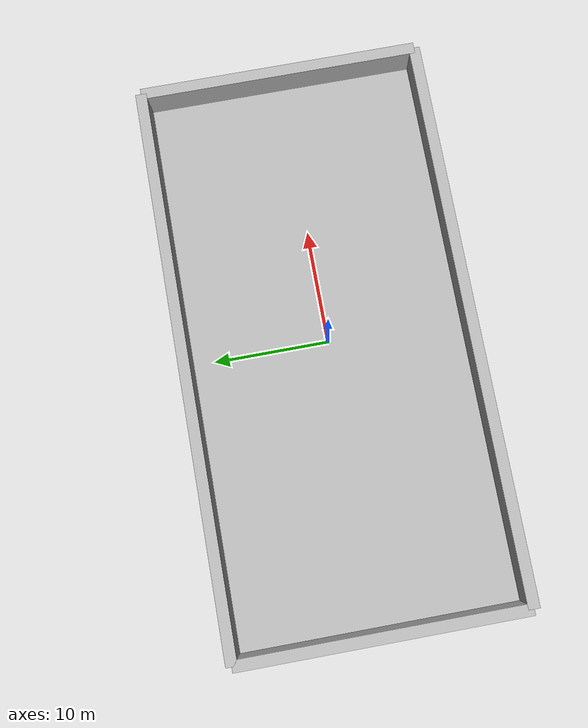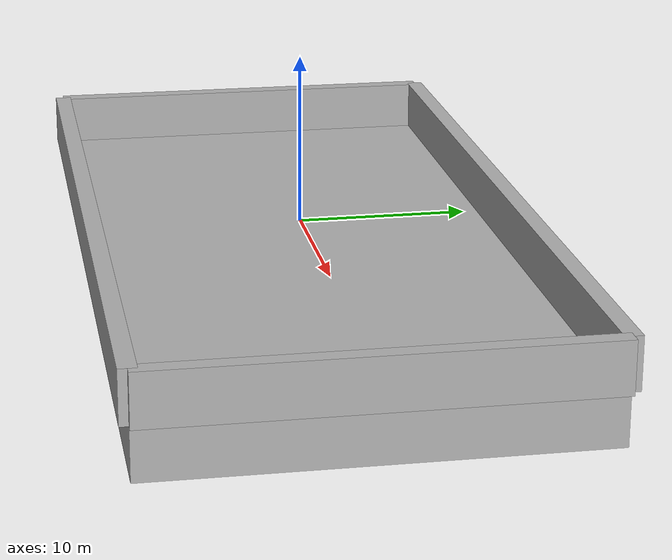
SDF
<sdf version='1.10'>
  <world name='underwater_world'>
    <scene>
      <ambient>0 1 1 1</ambient>
      <background>0 0.699999988 0.800000012 1</background>
      <shadows>true</shadows>
    </scene>
    <physics name='1ms' type='ode'>
      <max_step_size>0.001</max_step_size>
      <real_time_factor>1</real_time_factor>
      <real_time_update_rate>1000</real_time_update_rate>
    </physics>
    <plugin name='gz::sim::systems::Physics' filename='gz-sim-physics-system'/>
    <plugin name='gz::sim::systems::Sensors' filename='gz-sim-sensors-system'>
      <render_engine>ogre2</render_engine>
    </plugin>
    <plugin name='gz::sim::systems::UserCommands' filename='gz-sim-user-commands-system'/>
    <plugin name='gz::sim::systems::SceneBroadcaster' filename='gz-sim-scene-broadcaster-system'/>
    <plugin name='gz::sim::systems::Buoyancy' filename='gz-sim-buoyancy-system'>
      <uniform_fluid_density>1025</uniform_fluid_density>
    </plugin>
    <plugin name='gz::sim::systems::Imu' filename='gz-sim-imu-system'/>
    <plugin name='gz::sim::systems::AirPressure' filename='gz-sim-air-pressure-system'/>
    <gui>
      <plugin name='3D View' filename='MinimalScene'>
        <gz-gui>
          <title>3D View</title>
          <property type='bool' key='showTitleBar'>false</property>
          <property type='string' key='state'>docked</property>
        </gz-gui>
        <engine>ogre2</engine>
        <scene>scene</scene>
        <ambient>0.0 1.0 1.0</ambient>
        <background_color>0.0 0.7 0.8</background_color>
      </plugin>
      <plugin name='Entity context menu' filename='EntityContextMenuPlugin'>
        <gz-gui>
          <property key='state' type='string'>floating</property>
          <property key='width' type='double'>5</property>
          <property key='height' type='double'>5</property>
          <property key='showTitleBar' type='bool'>false</property>
        </gz-gui>
      </plugin>
      <plugin name='Scene Manager' filename='GzSceneManager'>
        <gz-gui>
          <property key='resizable' type='bool'>false</property>
          <property key='width' type='double'>5</property>
          <property key='height' type='double'>5</property>
          <property key='state' type='string'>floating</property>
          <property key='showTitleBar' type='bool'>false</property>
        </gz-gui>
      </plugin>
      <plugin name='Interactive view control' filename='InteractiveViewControl'>
        <gz-gui>
          <property key='resizable' type='bool'>false</property>
          <property key='width' type='double'>5</property>
          <property key='height' type='double'>5</property>
          <property key='state' type='string'>floating</property>
          <property key='showTitleBar' type='bool'>false</property>
        </gz-gui>
      </plugin>
      <plugin name='Camera Tracking' filename='CameraTracking'>
        <gz-gui>
          <property key='resizable' type='bool'>false</property>
          <property key='width' type='double'>5</property>
          <property key='height' type='double'>5</property>
          <property key='state' type='string'>floating</property>
          <property key='showTitleBar' type='bool'>false</property>
        </gz-gui>
      </plugin>
      <plugin name='Spawn Entities' filename='Spawn'>
        <gz-gui>
          <property key='resizable' type='bool'>false</property>
          <property key='width' type='double'>5</property>
          <property key='height' type='double'>5</property>
          <property key='state' type='string'>floating</property>
          <property key='showTitleBar' type='bool'>false</property>
        </gz-gui>
      </plugin>
      <plugin name='World control' filename='WorldControl'>
        <gz-gui>
          <title>World control</title>
          <property type='bool' key='showTitleBar'>false</property>
          <property type='bool' key='resizable'>false</property>
          <property type='double' key='height'>72</property>
          <property type='double' key='z'>1</property>
          <property type='string' key='state'>floating</property>
          <anchors target='3D View'>
            <line own='left' target='left'/>
            <line own='bottom' target='bottom'/>
          </anchors>
        </gz-gui>
        <play_pause>true</play_pause>
        <step>true</step>
        <start_paused>true</start_paused>
        <use_event>true</use_event>
      </plugin>
      <plugin name='World stats' filename='WorldStats'>
        <gz-gui>
          <title>World stats</title>
          <property type='bool' key='showTitleBar'>false</property>
          <property type='bool' key='resizable'>false</property>
          <property type='double' key='height'>110</property>
          <property type='double' key='width'>290</property>
          <property type='double' key='z'>1</property>
          <property type='string' key='state'>floating</property>
          <anchors target='3D View'>
            <line own='right' target='right'/>
            <line own='bottom' target='bottom'/>
          </anchors>
        </gz-gui>
        <sim_time>true</sim_time>
        <real_time>true</real_time>
        <real_time_factor>true</real_time_factor>
        <iterations>true</iterations>
      </plugin>
      <plugin name='Shapes' filename='Shapes'>
        <gz-gui>
          <property key='resizable' type='bool'>false</property>
          <property key='x' type='double'>0</property>
          <property key='y' type='double'>0</property>
          <property key='width' type='double'>250</property>
          <property key='height' type='double'>50</property>
          <property key='state' type='string'>floating</property>
          <property key='showTitleBar' type='bool'>false</property>
          <property key='cardBackground' type='string'>#666666</property>
        </gz-gui>
      </plugin>
      <plugin name='Component inspector' filename='ComponentInspector'>
        <gz-gui>
          <property type='string' key='state'>docked</property>
        </gz-gui>
      </plugin>
      <plugin name='Entity tree' filename='EntityTree'>
        <gz-gui>
          <property type='string' key='state'>docked</property>
        </gz-gui>
      </plugin>
      <plugin name='Transform control' filename='TransformControl'>
        <gz-gui>
          <property key='resizable' type='bool'>false</property>
          <property key='x' type='double'>0</property>
          <property key='y' type='double'>50</property>
          <property key='width' type='double'>250</property>
          <property key='height' type='double'>50</property>
          <property key='state' type='string'>floating</property>
          <property key='showTitleBar' type='bool'>false</property>
          <property key='cardBackground' type='string'>#777777</property>
        </gz-gui>
      </plugin>
    </gui>
    <gravity>0 0 -9.8000000000000007</gravity>
    <magnetic_field>5.5644999999999998e-06 2.2875799999999999e-05 -4.2388400000000002e-05</magnetic_field>
    <atmosphere type='adiabatic'/>
    <model name='long_wall_1'>
      <pose>0 -12.5 0 0 0 0</pose>
      <link name='box_link'>
        <inertial>
          <inertia>
            <ixx>0.16666</ixx>
            <ixy>0</ixy>
            <ixz>0</ixz>
            <iyy>0.16666</iyy>
            <iyz>0</iyz>
            <izz>0.16666</izz>
          </inertia>
          <mass>1</mass>
          <pose>0 0 0 0 0 0</pose>
        </inertial>
        <collision name='box_collision'>
          <geometry>
            <box>
              <size>50 1 3</size>
            </box>
          </geometry>
          <surface>
            <friction>
              <ode/>
            </friction>
            <bounce/>
            <contact/>
          </surface>
        </collision>
        <visual name='box_visual'>
          <geometry>
            <box>
              <size>50 1 3</size>
            </box>
          </geometry>
          <material>
            <ambient>0.300000012 0.300000012 0.300000012 1</ambient>
            <diffuse>0.699999988 0.699999988 0.699999988 1</diffuse>
            <specular>1 1 1 1</specular>
          </material>
        </visual>
        <pose>0 0 0 0 0 0</pose>
        <enable_wind>false</enable_wind>
      </link>
      <static>false</static>
      <self_collide>false</self_collide>
    </model>
    <model name='long_wall_2'>
      <pose>0 12.5 0 0 0 0</pose>
      <link name='box_link'>
        <inertial>
          <inertia>
            <ixx>0.16666</ixx>
            <ixy>0</ixy>
            <ixz>0</ixz>
            <iyy>0.16666</iyy>
            <iyz>0</iyz>
            <izz>0.16666</izz>
          </inertia>
          <mass>1</mass>
          <pose>0 0 0 0 0 0</pose>
        </inertial>
        <collision name='box_collision'>
          <geometry>
            <box>
              <size>50 1 3</size>
            </box>
          </geometry>
          <surface>
            <friction>
              <ode/>
            </friction>
            <bounce/>
            <contact/>
          </surface>
        </collision>
        <visual name='box_visual'>
          <geometry>
            <box>
              <size>50 1 3</size>
            </box>
          </geometry>
          <material>
            <ambient>0.300000012 0.300000012 0.300000012 1</ambient>
            <diffuse>0.699999988 0.699999988 0.699999988 1</diffuse>
            <specular>1 1 1 1</specular>
          </material>
        </visual>
        <pose>0 0 0 0 0 0</pose>
        <enable_wind>false</enable_wind>
      </link>
      <static>false</static>
      <self_collide>false</self_collide>
    </model>
    <model name='wide_wall_1'>
      <pose>25 0 0 0 0 1.5699999999999998</pose>
      <link name='box_link'>
        <inertial>
          <inertia>
            <ixx>0.16666</ixx>
            <ixy>0</ixy>
            <ixz>0</ixz>
            <iyy>0.16666</iyy>
            <iyz>0</iyz>
            <izz>0.16666</izz>
          </inertia>
          <mass>1</mass>
          <pose>0 0 0 0 0 0</pose>
        </inertial>
        <collision name='box_collision'>
          <geometry>
            <box>
              <size>25 1 3</size>
            </box>
          </geometry>
          <surface>
            <friction>
              <ode/>
            </friction>
            <bounce/>
            <contact/>
          </surface>
        </collision>
        <visual name='box_visual'>
          <geometry>
            <box>
              <size>25 1 3</size>
            </box>
          </geometry>
          <material>
            <ambient>0.300000012 0.300000012 0.300000012 1</ambient>
            <diffuse>0.699999988 0.699999988 0.699999988 1</diffuse>
            <specular>1 1 1 1</specular>
          </material>
        </visual>
        <pose>0 0 0 0 0 0</pose>
        <enable_wind>false</enable_wind>
      </link>
      <static>false</static>
      <self_collide>false</self_collide>
    </model>
    <model name='wide_wall_2'>
      <pose>-25 0 0 0 0 1.5699999999999998</pose>
      <link name='box_link'>
        <inertial>
          <inertia>
            <ixx>0.16666</ixx>
            <ixy>0</ixy>
            <ixz>0</ixz>
            <iyy>0.16666</iyy>
            <iyz>0</iyz>
            <izz>0.16666</izz>
          </inertia>
          <mass>1</mass>
          <pose>0 0 0 0 0 0</pose>
        </inertial>
        <collision name='box_collision'>
          <geometry>
            <box>
              <size>25 1 3</size>
            </box>
          </geometry>
          <surface>
            <friction>
              <ode/>
            </friction>
            <bounce/>
            <contact/>
          </surface>
        </collision>
        <visual name='box_visual'>
          <geometry>
            <box>
              <size>25 1 3</size>
            </box>
          </geometry>
          <material>
            <ambient>0.300000012 0.300000012 0.300000012 1</ambient>
            <diffuse>0.699999988 0.699999988 0.699999988 1</diffuse>
            <specular>1 1 1 1</specular>
          </material>
        </visual>
        <pose>0 0 0 0 0 0</pose>
        <enable_wind>false</enable_wind>
      </link>
      <static>false</static>
      <self_collide>false</self_collide>
    </model>
    <model name='floor'>
      <pose>0 0 -3 0 0 0</pose>
      <link name='box_link'>
        <inertial>
          <inertia>
            <ixx>0.16666</ixx>
            <ixy>0</ixy>
            <ixz>0</ixz>
            <iyy>0.16666</iyy>
            <iyz>0</iyz>
            <izz>0.16666</izz>
          </inertia>
          <mass>1</mass>
          <pose>0 0 0 0 0 0</pose>
        </inertial>
        <collision name='box_collision'>
          <geometry>
            <box>
              <size>50 25 3</size>
            </box>
          </geometry>
          <surface>
            <friction>
              <ode/>
            </friction>
            <bounce/>
            <contact/>
          </surface>
        </collision>
        <visual name='box_visual'>
          <geometry>
            <box>
              <size>50 25 3</size>
            </box>
          </geometry>
          <material>
            <ambient>0.300000012 0.300000012 0.300000012 1</ambient>
            <diffuse>0.699999988 0.699999988 0.699999988 1</diffuse>
            <specular>1 1 1 1</specular>
          </material>
        </visual>
        <pose>0 0 0 0 0 0</pose>
        <enable_wind>false</enable_wind>
      </link>
      <static>false</static>
      <self_collide>false</self_collide>
    </model>
  </world>
</sdf>
